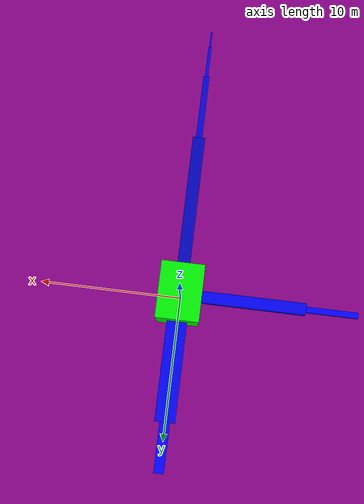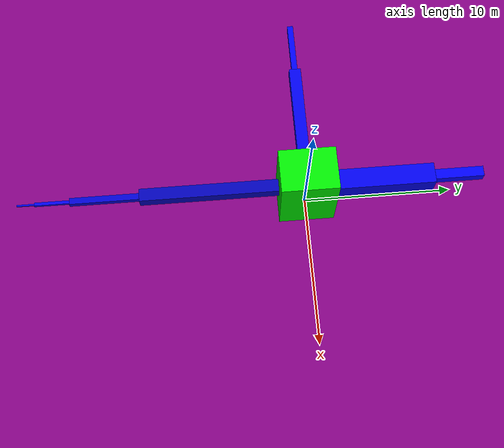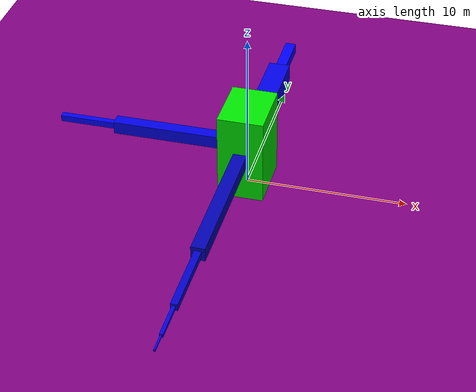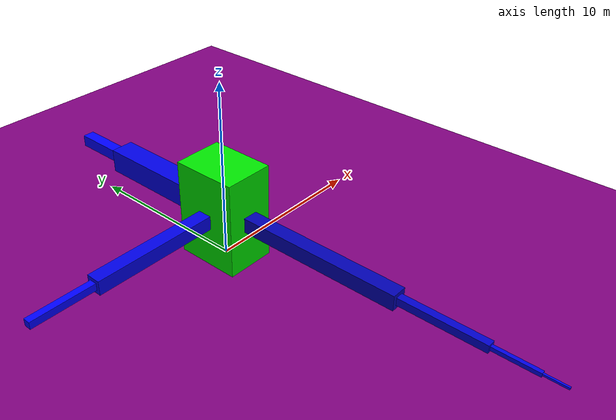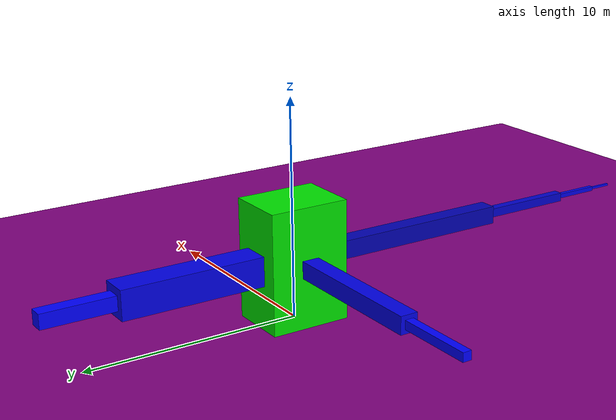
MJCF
<mujoco model="unnamed_model">
  <option timestep="0.01" integrator="RK4">
    <flag energy="enable" sensornoise="enable"/>
  </option>
  <default>
    <default class="/"/>
  </default>
  <worldbody>
    <light name="world_light" class="/" pos="0 0 10" dir="0 0 -1" diffuse="0.5 0.5 0.5"/>
    <geom name="ground_plane" class="/" type="plane" size="0 0 1" rgba="0.5 0 0.5 1"/>
    <body name="core_body" pos="0 0 2.7581426046834649">
      <geom name="core_geom" class="/" type="box" size="1.4206214852799315 1.8570042295785558 2.7581426046834649" rgba="0 0.90000000000000002 0 1"/>
      <joint name="first" class="/" type="free"/>
      <body name="front_limb_19" pos="0 -6.4320096217241511 0">
        <joint name="front_shoulder_19" class="/" type="ball" pos="0 4.5750053921455951 0"/>
        <geom name="front_arm_19" class="/" type="box" size="0.42292843238747679 4.5750053921455951 0.42292843238747679" rgba="0 0 0.69999999999999996 1" mass="1"/>
        <body name="front_limb_20" pos="0 -6.8625080882183926 0">
          <joint name="front_shoulder_20" class="/" type="ball" pos="0 2.2875026960727975 0"/>
          <geom name="front_arm_20" class="/" type="box" size="0.2114642161937384 2.2875026960727975 0.2114642161937384" rgba="0 0 0.80000000000000004 1" mass="1"/>
          <body name="front_limb_21" pos="0 -3.4312540441091963 0">
            <joint name="front_shoulder_21" class="/" type="ball" pos="0 1.1437513480363988 0"/>
            <geom name="front_arm_21" class="/" type="box" size="0.1057321080968692 1.1437513480363988 0.1057321080968692" rgba="0 0 0.90000000000000002 1" mass="1"/>
            <body name="front_limb_22" pos="0 -1.7156270220545982 0">
              <joint name="front_shoulder_22" class="/" type="ball" pos="0 0.57187567401819939 0"/>
              <geom name="front_arm_22" class="/" type="box" size="0.052866054048434599 0.57187567401819939 0.052866054048434599" rgba="0 0 1 1" mass="1"/>
            </body>
          </body>
        </body>
      </body>
      <body name="left_limb_23" pos="-4.9581540309867371 0 0">
        <joint name="left_shoulder_23" class="/" type="ball" pos="3.5375325457068052 0 0"/>
        <geom name="left_arm_23" class="/" type="box" size="3.5375325457068052 0.39696149645552448 0.39696149645552448" rgba="0 0 0.90000000000000002 1" mass="1"/>
        <body name="left_limb_24" pos="-5.306298818560208 0 0">
          <joint name="left_shoulder_24" class="/" type="ball" pos="1.7687662728534026 0 0"/>
          <geom name="left_arm_24" class="/" type="box" size="1.7687662728534026 0.19848074822776224 0.19848074822776224" rgba="0 0 1 1" mass="1"/>
        </body>
      </body>
      <body name="back_limb_25" pos="0 5.1418163080226869 0">
        <joint name="back_shoulder_25" class="/" type="ball" pos="0 -3.2848120784441308 0"/>
        <geom name="back_arm_25" class="/" type="box" size="0.67771810674621835 3.2848120784441308 0.67771810674621835" rgba="0 0 0.90000000000000002 1" mass="1"/>
        <body name="back_limb_26" pos="0 4.9272181176661967 0">
          <joint name="back_shoulder_26" class="/" type="ball" pos="0 -1.6424060392220654 0"/>
          <geom name="back_arm_26" class="/" type="box" size="0.33885905337310918 1.6424060392220654 0.33885905337310918" rgba="0 0 1 1" mass="1"/>
        </body>
      </body>
    </body>
  </worldbody>
  <actuator>
    <position name="frontxy_3" class="/" group="0" gear="0 0 1" joint="front_shoulder_19" kp="5"/>
    <position name="frontxz_3" class="/" group="0" gear="0 1 0" joint="front_shoulder_19" kp="5"/>
    <position name="frontyz_3" class="/" group="0" gear="1 0 0" joint="front_shoulder_19" kp="5"/>
    <position name="frontxy_2" class="/" group="0" gear="0 0 1" joint="front_shoulder_20" kp="5"/>
    <position name="frontxz_2" class="/" group="0" gear="0 1 0" joint="front_shoulder_20" kp="5"/>
    <position name="frontyz_2" class="/" group="0" gear="1 0 0" joint="front_shoulder_20" kp="5"/>
    <position name="frontxy_1" class="/" group="0" gear="0 0 1" joint="front_shoulder_21" kp="5"/>
    <position name="frontxz_1" class="/" group="0" gear="0 1 0" joint="front_shoulder_21" kp="5"/>
    <position name="frontyz_1" class="/" group="0" gear="1 0 0" joint="front_shoulder_21" kp="5"/>
    <position name="frontxy_0" class="/" group="0" gear="0 0 1" joint="front_shoulder_22" kp="5"/>
    <position name="frontxz_0" class="/" group="0" gear="0 1 0" joint="front_shoulder_22" kp="5"/>
    <position name="frontyz_0" class="/" group="0" gear="1 0 0" joint="front_shoulder_22" kp="5"/>
    <position name="leftxy_1" class="/" group="3" gear="0 0 1" joint="left_shoulder_23" kp="5"/>
    <position name="leftxz_1" class="/" group="3" gear="0 1 0" joint="left_shoulder_23" kp="5"/>
    <position name="leftyz_1" class="/" group="3" gear="1 0 0" joint="left_shoulder_23" kp="5"/>
    <position name="leftxy_0" class="/" group="3" gear="0 0 1" joint="left_shoulder_24" kp="5"/>
    <position name="leftxz_0" class="/" group="3" gear="0 1 0" joint="left_shoulder_24" kp="5"/>
    <position name="leftyz_0" class="/" group="3" gear="1 0 0" joint="left_shoulder_24" kp="5"/>
    <position name="backxy_1" class="/" group="2" gear="0 0 1" joint="back_shoulder_25" kp="5"/>
    <position name="backxz_1" class="/" group="2" gear="0 1 0" joint="back_shoulder_25" kp="5"/>
    <position name="backyz_1" class="/" group="2" gear="1 0 0" joint="back_shoulder_25" kp="5"/>
    <position name="backxy_0" class="/" group="2" gear="0 0 1" joint="back_shoulder_26" kp="5"/>
    <position name="backxz_0" class="/" group="2" gear="0 1 0" joint="back_shoulder_26" kp="5"/>
    <position name="backyz_0" class="/" group="2" gear="1 0 0" joint="back_shoulder_26" kp="5"/>
  </actuator>
</mujoco>
